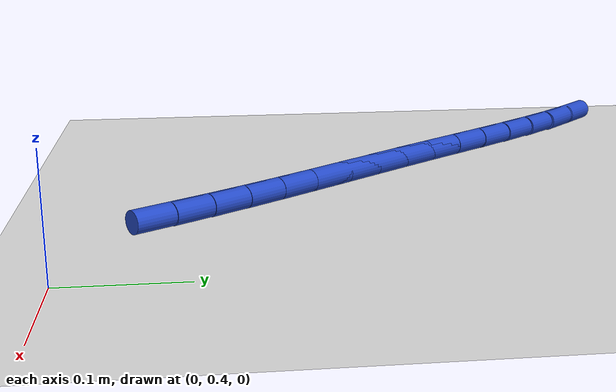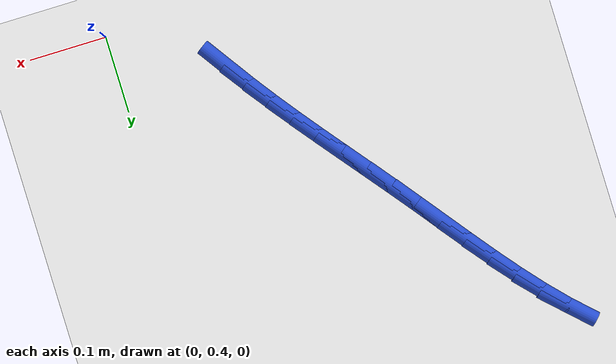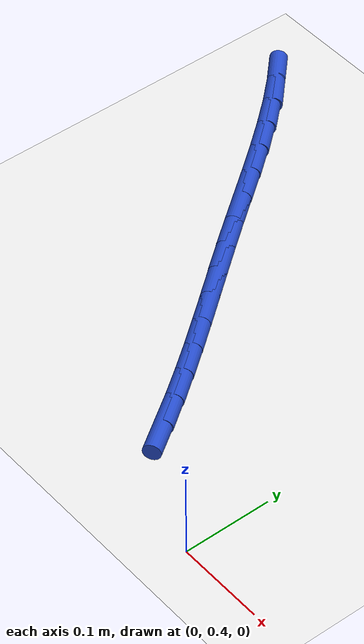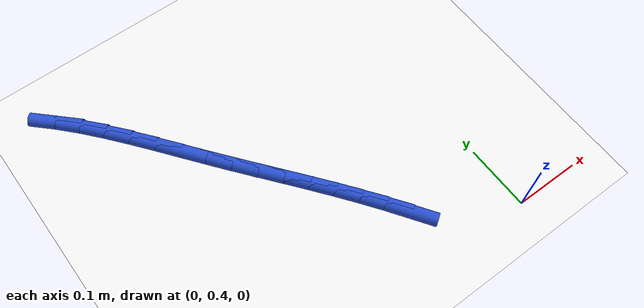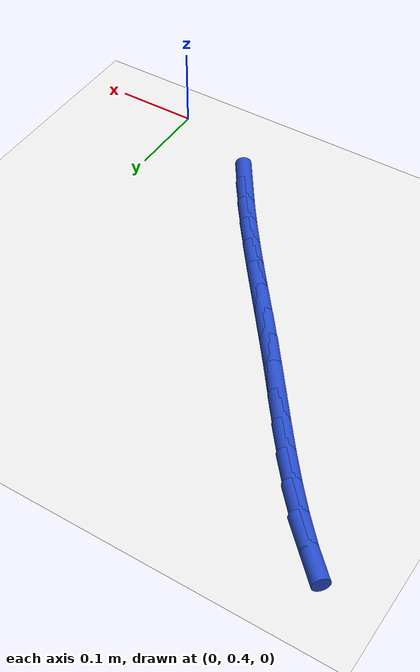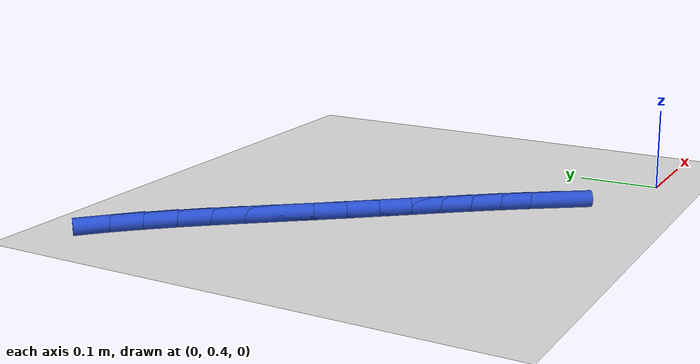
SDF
<sdf version="1.6">
 <world name="default">
  <model name="ground_plane">
   <static>1</static>
   <link name="link">
    <collision name="collision">
     <geometry><plane><normal>0 0 1</normal><size>100 100</size></plane></geometry>
     <surface><friction><ode><mu>100</mu><mu2>50</mu2></ode></friction></surface>
    </collision>
    <visual name="visual">
     <cast_shadows>0</cast_shadows>
     <geometry><plane><normal>0 0 1</normal><size>100 100</size></plane></geometry>
     <material>
      <script><uri>file://media/materials/scripts/gazebo.material</uri><name>Gazebo/WhiteGlow</name></script>
     </material>
    </visual>
   </link>
  </model>
  <model name="line">
   <link name="link_14">
    <pose>-0.13628140524998958 0.48138464474736636 0.01 0 1.57 -0.9699898676617609</pose>
    <collision name="collision">
     <geometry><cylinder><radius>0.01</radius><length>0.08</length></cylinder></geometry>
    </collision>
    <visual name="visual">
     <material>
      <script><name>Gazebo/Blue</name><uri>file://media/materials/scripts/gazebo.material</uri></script>
     </material>
     <geometry><cylinder><radius>0.01</radius><length>0.08</length></cylinder></geometry>
    </visual>
   </link>
   <link name="link_15">
    <pose>-0.15661495387258786 0.5110547371246702 0.01 0 1.57 -0.944958554836373</pose>
    <collision name="collision">
     <geometry><cylinder><radius>0.01</radius><length>0.08</length></cylinder></geometry>
    </collision>
    <visual name="visual">
     <material>
      <script><name>Gazebo/Blue</name><uri>file://media/materials/scripts/gazebo.material</uri></script>
     </material>
     <geometry><cylinder><radius>0.01</radius><length>0.08</length></cylinder></geometry>
    </visual>
   </link>
   <link name="link_16">
    <pose>-0.1778466574199505 0.5404306442743382 0.01 0 1.57 -0.9255900508139567</pose>
    <collision name="collision">
     <geometry><cylinder><radius>0.01</radius><length>0.08</length></cylinder></geometry>
    </collision>
    <visual name="visual">
     <material>
      <script><name>Gazebo/Blue</name><uri>file://media/materials/scripts/gazebo.material</uri></script>
     </material>
     <geometry><cylinder><radius>0.01</radius><length>0.08</length></cylinder></geometry>
    </visual>
   </link>
   <link name="link_17">
    <pose>-0.1998296365424303 0.569637395157917 0.01 0 1.57 -0.9117789209372545</pose>
    <collision name="collision">
     <geometry><cylinder><radius>0.01</radius><length>0.08</length></cylinder></geometry>
    </collision>
    <visual name="visual">
     <material>
      <script><name>Gazebo/Blue</name><uri>file://media/materials/scripts/gazebo.material</uri></script>
     </material>
     <geometry><cylinder><radius>0.01</radius><length>0.08</length></cylinder></geometry>
    </visual>
   </link>
   <link name="link_18">
    <pose>-0.22241701189038007 0.5988000187369532 0.01 0 1.57 -0.9033944323811187</pose>
    <collision name="collision">
     <geometry><cylinder><radius>0.01</radius><length>0.08</length></cylinder></geometry>
    </collision>
    <visual name="visual">
     <material>
      <script><name>Gazebo/Blue</name><uri>file://media/materials/scripts/gazebo.material</uri></script>
     </material>
     <geometry><cylinder><radius>0.01</radius><length>0.08</length></cylinder></geometry>
    </visual>
   </link>
   <link name="link_19">
    <pose>-0.24546190411415253 0.6280435439729938 0.01 0 1.57 -0.9002942639874242</pose>
    <collision name="collision">
     <geometry><cylinder><radius>0.01</radius><length>0.08</length></cylinder></geometry>
    </collision>
    <visual name="visual">
     <material>
      <script><name>Gazebo/Blue</name><uri>file://media/materials/scripts/gazebo.material</uri></script>
     </material>
     <geometry><cylinder><radius>0.01</radius><length>0.08</length></cylinder></geometry>
    </visual>
   </link>
   <link name="link_20">
    <pose>-0.26881743386410045 0.6574929998275851 0.01 0 1.57 -0.9023324728688558</pose>
    <collision name="collision">
     <geometry><cylinder><radius>0.01</radius><length>0.08</length></cylinder></geometry>
    </collision>
    <visual name="visual">
     <material>
      <script><name>Gazebo/Blue</name><uri>file://media/materials/scripts/gazebo.material</uri></script>
     </material>
     <geometry><cylinder><radius>0.01</radius><length>0.08</length></cylinder></geometry>
    </visual>
   </link>
   <link name="link_21">
    <pose>-0.29233672179057657 0.6872734152622738 0.01 0 1.57 -0.9093611093270487</pose>
    <collision name="collision">
     <geometry><cylinder><radius>0.01</radius><length>0.08</length></cylinder></geometry>
    </collision>
    <visual name="visual">
     <material>
      <script><name>Gazebo/Blue</name><uri>file://media/materials/scripts/gazebo.material</uri></script>
     </material>
     <geometry><cylinder><radius>0.01</radius><length>0.08</length></cylinder></geometry>
    </visual>
   </link>
   <link name="link_22">
    <pose>-0.31587291713464505 0.7175097695008696 0.01 0 1.57 -0.9181465654337321</pose>
    <collision name="collision">
     <geometry><cylinder><radius>0.01</radius><length>0.08</length></cylinder></geometry>
    </collision>
    <visual name="visual">
     <material>
      <script><name>Gazebo/Blue</name><uri>file://media/materials/scripts/gazebo.material</uri></script>
     </material>
     <geometry><cylinder><radius>0.01</radius><length>0.08</length></cylinder></geometry>
    </visual>
   </link>
   <link name="link_23">
    <pose>-0.3393436749315333 0.7482148244739392 0.01 0 1.57 -0.9190825455496698</pose>
    <collision name="collision">
     <geometry><cylinder><radius>0.01</radius><length>0.08</length></cylinder></geometry>
    </collision>
    <visual name="visual">
     <material>
      <script><name>Gazebo/Blue</name><uri>file://media/materials/scripts/gazebo.material</uri></script>
     </material>
     <geometry><cylinder><radius>0.01</radius><length>0.08</length></cylinder></geometry>
    </visual>
   </link>
   <link name="link_24">
    <pose>-0.3628684367384627 0.7790503048509066 0.01 0 1.57 -0.9103792200316874</pose>
    <collision name="collision">
     <geometry><cylinder><radius>0.01</radius><length>0.08</length></cylinder></geometry>
    </collision>
    <visual name="visual">
     <material>
      <script><name>Gazebo/Blue</name><uri>file://media/materials/scripts/gazebo.material</uri></script>
     </material>
     <geometry><cylinder><radius>0.01</radius><length>0.08</length></cylinder></geometry>
    </visual>
   </link>
   <link name="link_25">
    <pose>-0.3866059938904805 0.8096094805892656 0.01 0 1.57 -0.8918199268224742</pose>
    <collision name="collision">
     <geometry><cylinder><radius>0.01</radius><length>0.08</length></cylinder></geometry>
    </collision>
    <visual name="visual">
     <material>
      <script><name>Gazebo/Blue</name><uri>file://media/materials/scripts/gazebo.material</uri></script>
     </material>
     <geometry><cylinder><radius>0.01</radius><length>0.08</length></cylinder></geometry>
    </visual>
   </link>
   <link name="link_26">
    <pose>-0.4107151377226335 0.8394856216465097 0.01 0 1.57 -0.8628616554312494</pose>
    <collision name="collision">
     <geometry><cylinder><radius>0.01</radius><length>0.08</length></cylinder></geometry>
    </collision>
    <visual name="visual">
     <material>
      <script><name>Gazebo/Blue</name><uri>file://media/materials/scripts/gazebo.material</uri></script>
     </material>
     <geometry><cylinder><radius>0.01</radius><length>0.08</length></cylinder></geometry>
    </visual>
   </link>
   <link name="link_27">
    <pose>-0.43535465956996877 0.8682719979801325 0.01 0 1.57 -0.8226527461112596</pose>
    <collision name="collision">
     <geometry><cylinder><radius>0.01</radius><length>0.08</length></cylinder></geometry>
    </collision>
    <visual name="visual">
     <material>
      <script><name>Gazebo/Blue</name><uri>file://media/materials/scripts/gazebo.material</uri></script>
     </material>
     <geometry><cylinder><radius>0.01</radius><length>0.08</length></cylinder></geometry>
    </visual>
   </link>
   <link name="link_28">
    <pose>-0.46068335076753375 0.8955618795476277 0.01 0 1.57 -0.7700784846989615</pose>
    <collision name="collision">
     <geometry><cylinder><radius>0.01</radius><length>0.08</length></cylinder></geometry>
    </collision>
    <visual name="visual">
     <material>
      <script><name>Gazebo/Blue</name><uri>file://media/materials/scripts/gazebo.material</uri></script>
     </material>
     <geometry><cylinder><radius>0.01</radius><length>0.08</length></cylinder></geometry>
    </visual>
   </link>
  </model>
 </world>
</sdf>
